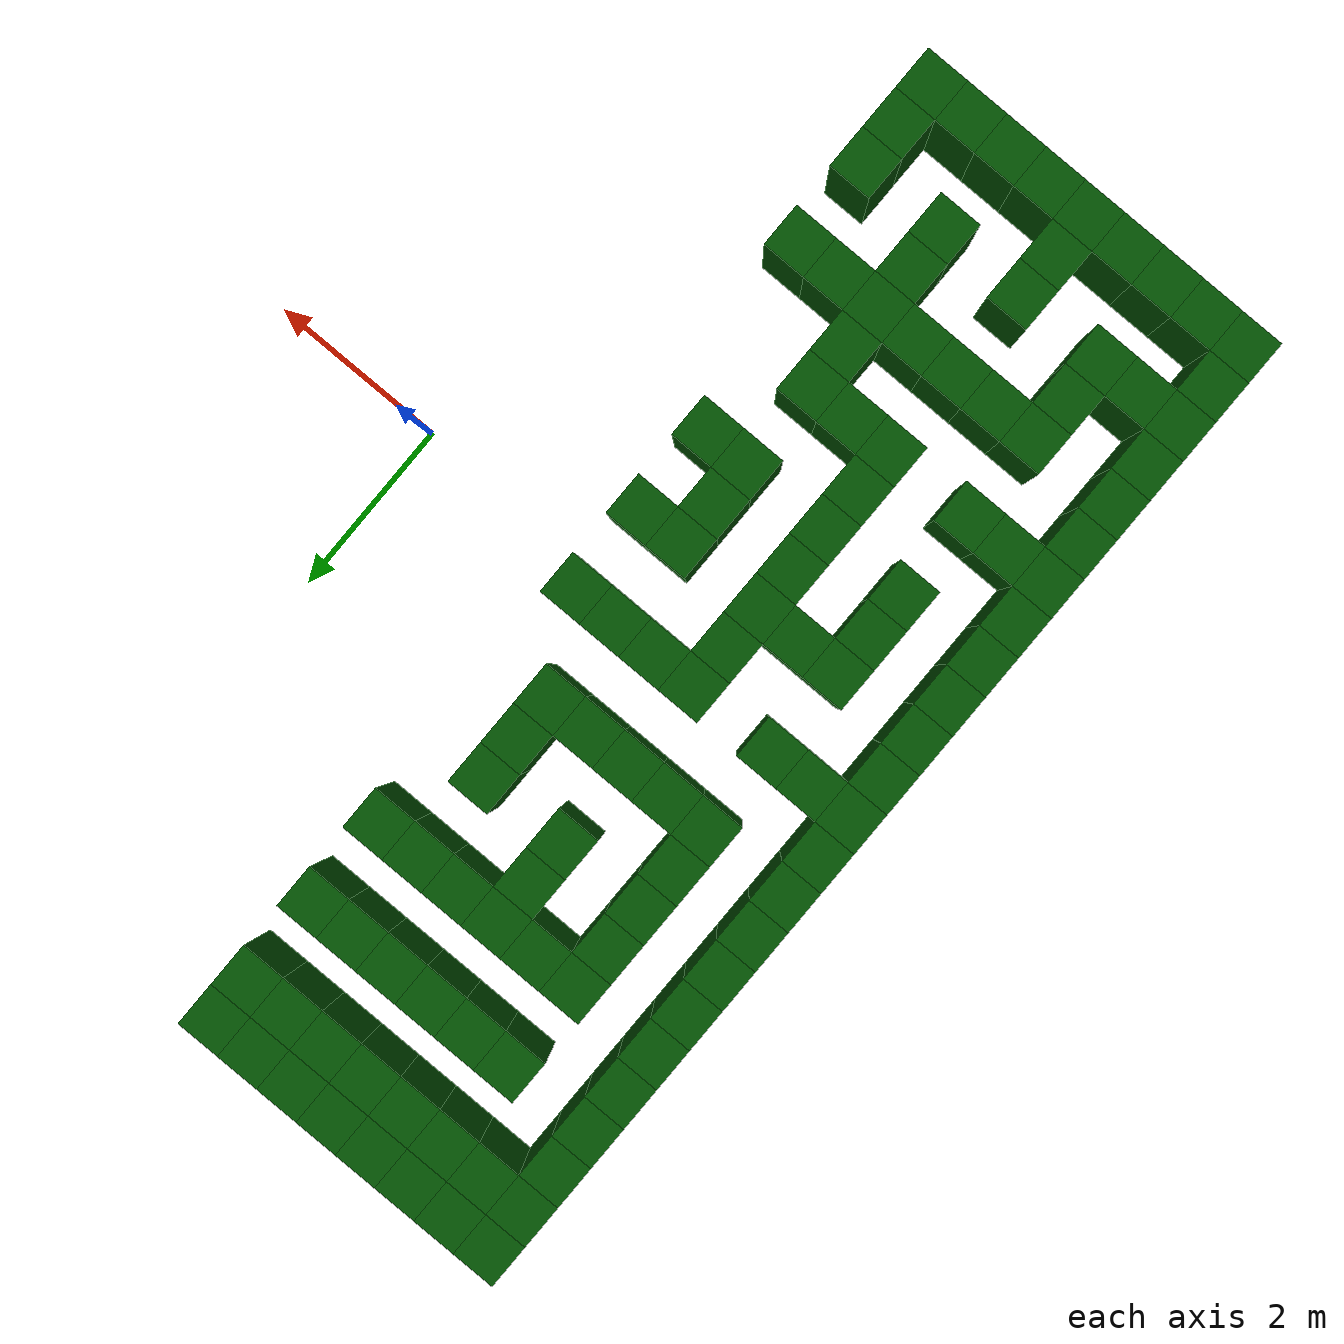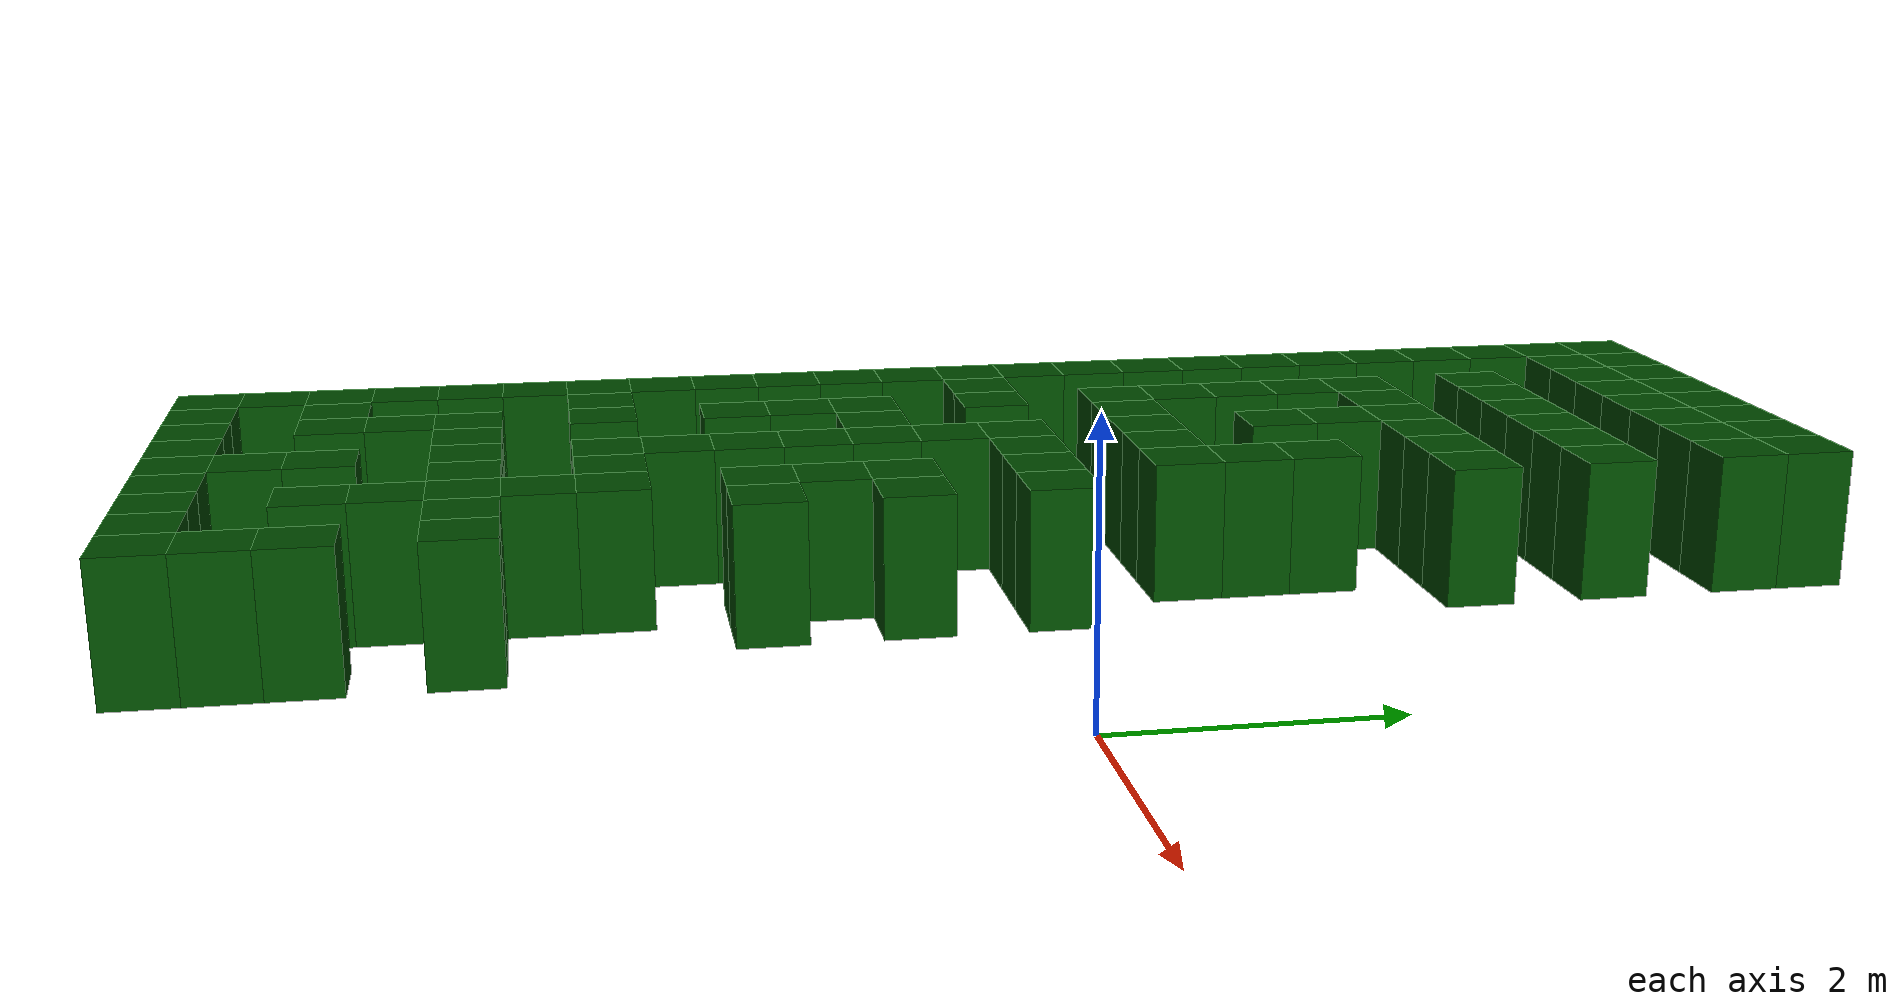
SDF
<sdf version="1.6">
 <world name="turtlebot3_maze">
  <model name="wall_0_0">
   <static>true</static>
   <pose>-5.75 -5.75 0.5 0 0 0</pose>
   <link name="link">
    <collision name="collision"><geometry><box><size>0.5 0.5 1.0</size></box></geometry></collision>
    <visual name="visual">
     <geometry><box><size>0.5 0.5 1.0</size></box></geometry>
     <material><ambient>0 0.3 0 1</ambient><diffuse>0 0.3 0 1</diffuse></material>
    </visual>
   </link>
  </model>
  <model name="wall_1_0">
   <static>true</static>
   <pose>-5.25 -5.75 0.5 0 0 0</pose>
   <link name="link">
    <collision name="collision"><geometry><box><size>0.5 0.5 1.0</size></box></geometry></collision>
    <visual name="visual">
     <geometry><box><size>0.5 0.5 1.0</size></box></geometry>
     <material><ambient>0 0.3 0 1</ambient><diffuse>0 0.3 0 1</diffuse></material>
    </visual>
   </link>
  </model>
  <model name="wall_2_0">
   <static>true</static>
   <pose>-4.75 -5.75 0.5 0 0 0</pose>
   <link name="link">
    <collision name="collision"><geometry><box><size>0.5 0.5 1.0</size></box></geometry></collision>
    <visual name="visual">
     <geometry><box><size>0.5 0.5 1.0</size></box></geometry>
     <material><ambient>0 0.3 0 1</ambient><diffuse>0 0.3 0 1</diffuse></material>
    </visual>
   </link>
  </model>
  <model name="wall_3_0">
   <static>true</static>
   <pose>-4.25 -5.75 0.5 0 0 0</pose>
   <link name="link">
    <collision name="collision"><geometry><box><size>0.5 0.5 1.0</size></box></geometry></collision>
    <visual name="visual">
     <geometry><box><size>0.5 0.5 1.0</size></box></geometry>
     <material><ambient>0 0.3 0 1</ambient><diffuse>0 0.3 0 1</diffuse></material>
    </visual>
   </link>
  </model>
  <model name="wall_4_0">
   <static>true</static>
   <pose>-3.75 -5.75 0.5 0 0 0</pose>
   <link name="link">
    <collision name="collision"><geometry><box><size>0.5 0.5 1.0</size></box></geometry></collision>
    <visual name="visual">
     <geometry><box><size>0.5 0.5 1.0</size></box></geometry>
     <material><ambient>0 0.3 0 1</ambient><diffuse>0 0.3 0 1</diffuse></material>
    </visual>
   </link>
  </model>
  <model name="wall_5_0">
   <static>true</static>
   <pose>-3.25 -5.75 0.5 0 0 0</pose>
   <link name="link">
    <collision name="collision"><geometry><box><size>0.5 0.5 1.0</size></box></geometry></collision>
    <visual name="visual">
     <geometry><box><size>0.5 0.5 1.0</size></box></geometry>
     <material><ambient>0 0.3 0 1</ambient><diffuse>0 0.3 0 1</diffuse></material>
    </visual>
   </link>
  </model>
  <model name="wall_6_0">
   <static>true</static>
   <pose>-2.75 -5.75 0.5 0 0 0</pose>
   <link name="link">
    <collision name="collision"><geometry><box><size>0.5 0.5 1.0</size></box></geometry></collision>
    <visual name="visual">
     <geometry><box><size>0.5 0.5 1.0</size></box></geometry>
     <material><ambient>0 0.3 0 1</ambient><diffuse>0 0.3 0 1</diffuse></material>
    </visual>
   </link>
  </model>
  <model name="wall_7_0">
   <static>true</static>
   <pose>-2.25 -5.75 0.5 0 0 0</pose>
   <link name="link">
    <collision name="collision"><geometry><box><size>0.5 0.5 1.0</size></box></geometry></collision>
    <visual name="visual">
     <geometry><box><size>0.5 0.5 1.0</size></box></geometry>
     <material><ambient>0 0.3 0 1</ambient><diffuse>0 0.3 0 1</diffuse></material>
    </visual>
   </link>
  </model>
  <model name="wall_8_0">
   <static>true</static>
   <pose>-1.75 -5.75 0.5 0 0 0</pose>
   <link name="link">
    <collision name="collision"><geometry><box><size>0.5 0.5 1.0</size></box></geometry></collision>
    <visual name="visual">
     <geometry><box><size>0.5 0.5 1.0</size></box></geometry>
     <material><ambient>0 0.3 0 1</ambient><diffuse>0 0.3 0 1</diffuse></material>
    </visual>
   </link>
  </model>
  <model name="wall_0_1">
   <static>true</static>
   <pose>-5.75 -5.25 0.5 0 0 0</pose>
   <link name="link">
    <collision name="collision"><geometry><box><size>0.5 0.5 1.0</size></box></geometry></collision>
    <visual name="visual">
     <geometry><box><size>0.5 0.5 1.0</size></box></geometry>
     <material><ambient>0 0.3 0 1</ambient><diffuse>0 0.3 0 1</diffuse></material>
    </visual>
   </link>
  </model>
  <model name="wall_4_1">
   <static>true</static>
   <pose>-3.75 -5.25 0.5 0 0 0</pose>
   <link name="link">
    <collision name="collision"><geometry><box><size>0.5 0.5 1.0</size></box></geometry></collision>
    <visual name="visual">
     <geometry><box><size>0.5 0.5 1.0</size></box></geometry>
     <material><ambient>0 0.3 0 1</ambient><diffuse>0 0.3 0 1</diffuse></material>
    </visual>
   </link>
  </model>
  <model name="wall_8_1">
   <static>true</static>
   <pose>-1.75 -5.25 0.5 0 0 0</pose>
   <link name="link">
    <collision name="collision"><geometry><box><size>0.5 0.5 1.0</size></box></geometry></collision>
    <visual name="visual">
     <geometry><box><size>0.5 0.5 1.0</size></box></geometry>
     <material><ambient>0 0.3 0 1</ambient><diffuse>0 0.3 0 1</diffuse></material>
    </visual>
   </link>
  </model>
  <model name="wall_0_2">
   <static>true</static>
   <pose>-5.75 -4.75 0.5 0 0 0</pose>
   <link name="link">
    <collision name="collision"><geometry><box><size>0.5 0.5 1.0</size></box></geometry></collision>
    <visual name="visual">
     <geometry><box><size>0.5 0.5 1.0</size></box></geometry>
     <material><ambient>0 0.3 0 1</ambient><diffuse>0 0.3 0 1</diffuse></material>
    </visual>
   </link>
  </model>
  <model name="wall_1_2">
   <static>true</static>
   <pose>-5.25 -4.75 0.5 0 0 0</pose>
   <link name="link">
    <collision name="collision"><geometry><box><size>0.5 0.5 1.0</size></box></geometry></collision>
    <visual name="visual">
     <geometry><box><size>0.5 0.5 1.0</size></box></geometry>
     <material><ambient>0 0.3 0 1</ambient><diffuse>0 0.3 0 1</diffuse></material>
    </visual>
   </link>
  </model>
  <model name="wall_2_2">
   <static>true</static>
   <pose>-4.75 -4.75 0.5 0 0 0</pose>
   <link name="link">
    <collision name="collision"><geometry><box><size>0.5 0.5 1.0</size></box></geometry></collision>
    <visual name="visual">
     <geometry><box><size>0.5 0.5 1.0</size></box></geometry>
     <material><ambient>0 0.3 0 1</ambient><diffuse>0 0.3 0 1</diffuse></material>
    </visual>
   </link>
  </model>
  <model name="wall_4_2">
   <static>true</static>
   <pose>-3.75 -4.75 0.5 0 0 0</pose>
   <link name="link">
    <collision name="collision"><geometry><box><size>0.5 0.5 1.0</size></box></geometry></collision>
    <visual name="visual">
     <geometry><box><size>0.5 0.5 1.0</size></box></geometry>
     <material><ambient>0 0.3 0 1</ambient><diffuse>0 0.3 0 1</diffuse></material>
    </visual>
   </link>
  </model>
  <model name="wall_6_2">
   <static>true</static>
   <pose>-2.75 -4.75 0.5 0 0 0</pose>
   <link name="link">
    <collision name="collision"><geometry><box><size>0.5 0.5 1.0</size></box></geometry></collision>
    <visual name="visual">
     <geometry><box><size>0.5 0.5 1.0</size></box></geometry>
     <material><ambient>0 0.3 0 1</ambient><diffuse>0 0.3 0 1</diffuse></material>
    </visual>
   </link>
  </model>
  <model name="wall_8_2">
   <static>true</static>
   <pose>-1.75 -4.75 0.5 0 0 0</pose>
   <link name="link">
    <collision name="collision"><geometry><box><size>0.5 0.5 1.0</size></box></geometry></collision>
    <visual name="visual">
     <geometry><box><size>0.5 0.5 1.0</size></box></geometry>
     <material><ambient>0 0.3 0 1</ambient><diffuse>0 0.3 0 1</diffuse></material>
    </visual>
   </link>
  </model>
  <model name="wall_0_3">
   <static>true</static>
   <pose>-5.75 -4.25 0.5 0 0 0</pose>
   <link name="link">
    <collision name="collision"><geometry><box><size>0.5 0.5 1.0</size></box></geometry></collision>
    <visual name="visual">
     <geometry><box><size>0.5 0.5 1.0</size></box></geometry>
     <material><ambient>0 0.3 0 1</ambient><diffuse>0 0.3 0 1</diffuse></material>
    </visual>
   </link>
  </model>
  <model name="wall_2_3">
   <static>true</static>
   <pose>-4.75 -4.25 0.5 0 0 0</pose>
   <link name="link">
    <collision name="collision"><geometry><box><size>0.5 0.5 1.0</size></box></geometry></collision>
    <visual name="visual">
     <geometry><box><size>0.5 0.5 1.0</size></box></geometry>
     <material><ambient>0 0.3 0 1</ambient><diffuse>0 0.3 0 1</diffuse></material>
    </visual>
   </link>
  </model>
  <model name="wall_6_3">
   <static>true</static>
   <pose>-2.75 -4.25 0.5 0 0 0</pose>
   <link name="link">
    <collision name="collision"><geometry><box><size>0.5 0.5 1.0</size></box></geometry></collision>
    <visual name="visual">
     <geometry><box><size>0.5 0.5 1.0</size></box></geometry>
     <material><ambient>0 0.3 0 1</ambient><diffuse>0 0.3 0 1</diffuse></material>
    </visual>
   </link>
  </model>
  <model name="wall_0_4">
   <static>true</static>
   <pose>-5.75 -3.75 0.5 0 0 0</pose>
   <link name="link">
    <collision name="collision"><geometry><box><size>0.5 0.5 1.0</size></box></geometry></collision>
    <visual name="visual">
     <geometry><box><size>0.5 0.5 1.0</size></box></geometry>
     <material><ambient>0 0.3 0 1</ambient><diffuse>0 0.3 0 1</diffuse></material>
    </visual>
   </link>
  </model>
  <model name="wall_2_4">
   <static>true</static>
   <pose>-4.75 -3.75 0.5 0 0 0</pose>
   <link name="link">
    <collision name="collision"><geometry><box><size>0.5 0.5 1.0</size></box></geometry></collision>
    <visual name="visual">
     <geometry><box><size>0.5 0.5 1.0</size></box></geometry>
     <material><ambient>0 0.3 0 1</ambient><diffuse>0 0.3 0 1</diffuse></material>
    </visual>
   </link>
  </model>
  <model name="wall_3_4">
   <static>true</static>
   <pose>-4.25 -3.75 0.5 0 0 0</pose>
   <link name="link">
    <collision name="collision"><geometry><box><size>0.5 0.5 1.0</size></box></geometry></collision>
    <visual name="visual">
     <geometry><box><size>0.5 0.5 1.0</size></box></geometry>
     <material><ambient>0 0.3 0 1</ambient><diffuse>0 0.3 0 1</diffuse></material>
    </visual>
   </link>
  </model>
  <model name="wall_4_4">
   <static>true</static>
   <pose>-3.75 -3.75 0.5 0 0 0</pose>
   <link name="link">
    <collision name="collision"><geometry><box><size>0.5 0.5 1.0</size></box></geometry></collision>
    <visual name="visual">
     <geometry><box><size>0.5 0.5 1.0</size></box></geometry>
     <material><ambient>0 0.3 0 1</ambient><diffuse>0 0.3 0 1</diffuse></material>
    </visual>
   </link>
  </model>
  <model name="wall_5_4">
   <static>true</static>
   <pose>-3.25 -3.75 0.5 0 0 0</pose>
   <link name="link">
    <collision name="collision"><geometry><box><size>0.5 0.5 1.0</size></box></geometry></collision>
    <visual name="visual">
     <geometry><box><size>0.5 0.5 1.0</size></box></geometry>
     <material><ambient>0 0.3 0 1</ambient><diffuse>0 0.3 0 1</diffuse></material>
    </visual>
   </link>
  </model>
  <model name="wall_6_4">
   <static>true</static>
   <pose>-2.75 -3.75 0.5 0 0 0</pose>
   <link name="link">
    <collision name="collision"><geometry><box><size>0.5 0.5 1.0</size></box></geometry></collision>
    <visual name="visual">
     <geometry><box><size>0.5 0.5 1.0</size></box></geometry>
     <material><ambient>0 0.3 0 1</ambient><diffuse>0 0.3 0 1</diffuse></material>
    </visual>
   </link>
  </model>
  <model name="wall_7_4">
   <static>true</static>
   <pose>-2.25 -3.75 0.5 0 0 0</pose>
   <link name="link">
    <collision name="collision"><geometry><box><size>0.5 0.5 1.0</size></box></geometry></collision>
    <visual name="visual">
     <geometry><box><size>0.5 0.5 1.0</size></box></geometry>
     <material><ambient>0 0.3 0 1</ambient><diffuse>0 0.3 0 1</diffuse></material>
    </visual>
   </link>
  </model>
  <model name="wall_8_4">
   <static>true</static>
   <pose>-1.75 -3.75 0.5 0 0 0</pose>
   <link name="link">
    <collision name="collision"><geometry><box><size>0.5 0.5 1.0</size></box></geometry></collision>
    <visual name="visual">
     <geometry><box><size>0.5 0.5 1.0</size></box></geometry>
     <material><ambient>0 0.3 0 1</ambient><diffuse>0 0.3 0 1</diffuse></material>
    </visual>
   </link>
  </model>
  <model name="wall_0_5">
   <static>true</static>
   <pose>-5.75 -3.25 0.5 0 0 0</pose>
   <link name="link">
    <collision name="collision"><geometry><box><size>0.5 0.5 1.0</size></box></geometry></collision>
    <visual name="visual">
     <geometry><box><size>0.5 0.5 1.0</size></box></geometry>
     <material><ambient>0 0.3 0 1</ambient><diffuse>0 0.3 0 1</diffuse></material>
    </visual>
   </link>
  </model>
  <model name="wall_6_5">
   <static>true</static>
   <pose>-2.75 -3.25 0.5 0 0 0</pose>
   <link name="link">
    <collision name="collision"><geometry><box><size>0.5 0.5 1.0</size></box></geometry></collision>
    <visual name="visual">
     <geometry><box><size>0.5 0.5 1.0</size></box></geometry>
     <material><ambient>0 0.3 0 1</ambient><diffuse>0 0.3 0 1</diffuse></material>
    </visual>
   </link>
  </model>
  <model name="wall_0_6">
   <static>true</static>
   <pose>-5.75 -2.75 0.5 0 0 0</pose>
   <link name="link">
    <collision name="collision"><geometry><box><size>0.5 0.5 1.0</size></box></geometry></collision>
    <visual name="visual">
     <geometry><box><size>0.5 0.5 1.0</size></box></geometry>
     <material><ambient>0 0.3 0 1</ambient><diffuse>0 0.3 0 1</diffuse></material>
    </visual>
   </link>
  </model>
  <model name="wall_1_6">
   <static>true</static>
   <pose>-5.25 -2.75 0.5 0 0 0</pose>
   <link name="link">
    <collision name="collision"><geometry><box><size>0.5 0.5 1.0</size></box></geometry></collision>
    <visual name="visual">
     <geometry><box><size>0.5 0.5 1.0</size></box></geometry>
     <material><ambient>0 0.3 0 1</ambient><diffuse>0 0.3 0 1</diffuse></material>
    </visual>
   </link>
  </model>
  <model name="wall_2_6">
   <static>true</static>
   <pose>-4.75 -2.75 0.5 0 0 0</pose>
   <link name="link">
    <collision name="collision"><geometry><box><size>0.5 0.5 1.0</size></box></geometry></collision>
    <visual name="visual">
     <geometry><box><size>0.5 0.5 1.0</size></box></geometry>
     <material><ambient>0 0.3 0 1</ambient><diffuse>0 0.3 0 1</diffuse></material>
    </visual>
   </link>
  </model>
  <model name="wall_4_6">
   <static>true</static>
   <pose>-3.75 -2.75 0.5 0 0 0</pose>
   <link name="link">
    <collision name="collision"><geometry><box><size>0.5 0.5 1.0</size></box></geometry></collision>
    <visual name="visual">
     <geometry><box><size>0.5 0.5 1.0</size></box></geometry>
     <material><ambient>0 0.3 0 1</ambient><diffuse>0 0.3 0 1</diffuse></material>
    </visual>
   </link>
  </model>
  <model name="wall_5_6">
   <static>true</static>
   <pose>-3.25 -2.75 0.5 0 0 0</pose>
   <link name="link">
    <collision name="collision"><geometry><box><size>0.5 0.5 1.0</size></box></geometry></collision>
    <visual name="visual">
     <geometry><box><size>0.5 0.5 1.0</size></box></geometry>
     <material><ambient>0 0.3 0 1</ambient><diffuse>0 0.3 0 1</diffuse></material>
    </visual>
   </link>
  </model>
  <model name="wall_6_6">
   <static>true</static>
   <pose>-2.75 -2.75 0.5 0 0 0</pose>
   <link name="link">
    <collision name="collision"><geometry><box><size>0.5 0.5 1.0</size></box></geometry></collision>
    <visual name="visual">
     <geometry><box><size>0.5 0.5 1.0</size></box></geometry>
     <material><ambient>0 0.3 0 1</ambient><diffuse>0 0.3 0 1</diffuse></material>
    </visual>
   </link>
  </model>
  <model name="wall_0_7">
   <static>true</static>
   <pose>-5.75 -2.25 0.5 0 0 0</pose>
   <link name="link">
    <collision name="collision"><geometry><box><size>0.5 0.5 1.0</size></box></geometry></collision>
    <visual name="visual">
     <geometry><box><size>0.5 0.5 1.0</size></box></geometry>
     <material><ambient>0 0.3 0 1</ambient><diffuse>0 0.3 0 1</diffuse></material>
    </visual>
   </link>
  </model>
  <model name="wall_4_7">
   <static>true</static>
   <pose>-3.75 -2.25 0.5 0 0 0</pose>
   <link name="link">
    <collision name="collision"><geometry><box><size>0.5 0.5 1.0</size></box></geometry></collision>
    <visual name="visual">
     <geometry><box><size>0.5 0.5 1.0</size></box></geometry>
     <material><ambient>0 0.3 0 1</ambient><diffuse>0 0.3 0 1</diffuse></material>
    </visual>
   </link>
  </model>
  <model name="wall_0_8">
   <static>true</static>
   <pose>-5.75 -1.75 0.5 0 0 0</pose>
   <link name="link">
    <collision name="collision"><geometry><box><size>0.5 0.5 1.0</size></box></geometry></collision>
    <visual name="visual">
     <geometry><box><size>0.5 0.5 1.0</size></box></geometry>
     <material><ambient>0 0.3 0 1</ambient><diffuse>0 0.3 0 1</diffuse></material>
    </visual>
   </link>
  </model>
  <model name="wall_2_8">
   <static>true</static>
   <pose>-4.75 -1.75 0.5 0 0 0</pose>
   <link name="link">
    <collision name="collision"><geometry><box><size>0.5 0.5 1.0</size></box></geometry></collision>
    <visual name="visual">
     <geometry><box><size>0.5 0.5 1.0</size></box></geometry>
     <material><ambient>0 0.3 0 1</ambient><diffuse>0 0.3 0 1</diffuse></material>
    </visual>
   </link>
  </model>
  <model name="wall_4_8">
   <static>true</static>
   <pose>-3.75 -1.75 0.5 0 0 0</pose>
   <link name="link">
    <collision name="collision"><geometry><box><size>0.5 0.5 1.0</size></box></geometry></collision>
    <visual name="visual">
     <geometry><box><size>0.5 0.5 1.0</size></box></geometry>
     <material><ambient>0 0.3 0 1</ambient><diffuse>0 0.3 0 1</diffuse></material>
    </visual>
   </link>
  </model>
  <model name="wall_6_8">
   <static>true</static>
   <pose>-2.75 -1.75 0.5 0 0 0</pose>
   <link name="link">
    <collision name="collision"><geometry><box><size>0.5 0.5 1.0</size></box></geometry></collision>
    <visual name="visual">
     <geometry><box><size>0.5 0.5 1.0</size></box></geometry>
     <material><ambient>0 0.3 0 1</ambient><diffuse>0 0.3 0 1</diffuse></material>
    </visual>
   </link>
  </model>
  <model name="wall_7_8">
   <static>true</static>
   <pose>-2.25 -1.75 0.5 0 0 0</pose>
   <link name="link">
    <collision name="collision"><geometry><box><size>0.5 0.5 1.0</size></box></geometry></collision>
    <visual name="visual">
     <geometry><box><size>0.5 0.5 1.0</size></box></geometry>
     <material><ambient>0 0.3 0 1</ambient><diffuse>0 0.3 0 1</diffuse></material>
    </visual>
   </link>
  </model>
  <model name="wall_0_9">
   <static>true</static>
   <pose>-5.75 -1.25 0.5 0 0 0</pose>
   <link name="link">
    <collision name="collision"><geometry><box><size>0.5 0.5 1.0</size></box></geometry></collision>
    <visual name="visual">
     <geometry><box><size>0.5 0.5 1.0</size></box></geometry>
     <material><ambient>0 0.3 0 1</ambient><diffuse>0 0.3 0 1</diffuse></material>
    </visual>
   </link>
  </model>
  <model name="wall_2_9">
   <static>true</static>
   <pose>-4.75 -1.25 0.5 0 0 0</pose>
   <link name="link">
    <collision name="collision"><geometry><box><size>0.5 0.5 1.0</size></box></geometry></collision>
    <visual name="visual">
     <geometry><box><size>0.5 0.5 1.0</size></box></geometry>
     <material><ambient>0 0.3 0 1</ambient><diffuse>0 0.3 0 1</diffuse></material>
    </visual>
   </link>
  </model>
  <model name="wall_4_9">
   <static>true</static>
   <pose>-3.75 -1.25 0.5 0 0 0</pose>
   <link name="link">
    <collision name="collision"><geometry><box><size>0.5 0.5 1.0</size></box></geometry></collision>
    <visual name="visual">
     <geometry><box><size>0.5 0.5 1.0</size></box></geometry>
     <material><ambient>0 0.3 0 1</ambient><diffuse>0 0.3 0 1</diffuse></material>
    </visual>
   </link>
  </model>
  <model name="wall_6_9">
   <static>true</static>
   <pose>-2.75 -1.25 0.5 0 0 0</pose>
   <link name="link">
    <collision name="collision"><geometry><box><size>0.5 0.5 1.0</size></box></geometry></collision>
    <visual name="visual">
     <geometry><box><size>0.5 0.5 1.0</size></box></geometry>
     <material><ambient>0 0.3 0 1</ambient><diffuse>0 0.3 0 1</diffuse></material>
    </visual>
   </link>
  </model>
  <model name="wall_0_10">
   <static>true</static>
   <pose>-5.75 -0.75 0.5 0 0 0</pose>
   <link name="link">
    <collision name="collision"><geometry><box><size>0.5 0.5 1.0</size></box></geometry></collision>
    <visual name="visual">
     <geometry><box><size>0.5 0.5 1.0</size></box></geometry>
     <material><ambient>0 0.3 0 1</ambient><diffuse>0 0.3 0 1</diffuse></material>
    </visual>
   </link>
  </model>
  <model name="wall_2_10">
   <static>true</static>
   <pose>-4.75 -0.75 0.5 0 0 0</pose>
   <link name="link">
    <collision name="collision"><geometry><box><size>0.5 0.5 1.0</size></box></geometry></collision>
    <visual name="visual">
     <geometry><box><size>0.5 0.5 1.0</size></box></geometry>
     <material><ambient>0 0.3 0 1</ambient><diffuse>0 0.3 0 1</diffuse></material>
    </visual>
   </link>
  </model>
  <model name="wall_3_10">
   <static>true</static>
   <pose>-4.25 -0.75 0.5 0 0 0</pose>
   <link name="link">
    <collision name="collision"><geometry><box><size>0.5 0.5 1.0</size></box></geometry></collision>
    <visual name="visual">
     <geometry><box><size>0.5 0.5 1.0</size></box></geometry>
     <material><ambient>0 0.3 0 1</ambient><diffuse>0 0.3 0 1</diffuse></material>
    </visual>
   </link>
  </model>
  <model name="wall_4_10">
   <static>true</static>
   <pose>-3.75 -0.75 0.5 0 0 0</pose>
   <link name="link">
    <collision name="collision"><geometry><box><size>0.5 0.5 1.0</size></box></geometry></collision>
    <visual name="visual">
     <geometry><box><size>0.5 0.5 1.0</size></box></geometry>
     <material><ambient>0 0.3 0 1</ambient><diffuse>0 0.3 0 1</diffuse></material>
    </visual>
   </link>
  </model>
  <model name="wall_6_10">
   <static>true</static>
   <pose>-2.75 -0.75 0.5 0 0 0</pose>
   <link name="link">
    <collision name="collision"><geometry><box><size>0.5 0.5 1.0</size></box></geometry></collision>
    <visual name="visual">
     <geometry><box><size>0.5 0.5 1.0</size></box></geometry>
     <material><ambient>0 0.3 0 1</ambient><diffuse>0 0.3 0 1</diffuse></material>
    </visual>
   </link>
  </model>
  <model name="wall_7_10">
   <static>true</static>
   <pose>-2.25 -0.75 0.5 0 0 0</pose>
   <link name="link">
    <collision name="collision"><geometry><box><size>0.5 0.5 1.0</size></box></geometry></collision>
    <visual name="visual">
     <geometry><box><size>0.5 0.5 1.0</size></box></geometry>
     <material><ambient>0 0.3 0 1</ambient><diffuse>0 0.3 0 1</diffuse></material>
    </visual>
   </link>
  </model>
  <model name="wall_0_11">
   <static>true</static>
   <pose>-5.75 -0.25 0.5 0 0 0</pose>
   <link name="link">
    <collision name="collision"><geometry><box><size>0.5 0.5 1.0</size></box></geometry></collision>
    <visual name="visual">
     <geometry><box><size>0.5 0.5 1.0</size></box></geometry>
     <material><ambient>0 0.3 0 1</ambient><diffuse>0 0.3 0 1</diffuse></material>
    </visual>
   </link>
  </model>
  <model name="wall_4_11">
   <static>true</static>
   <pose>-3.75 -0.25 0.5 0 0 0</pose>
   <link name="link">
    <collision name="collision"><geometry><box><size>0.5 0.5 1.0</size></box></geometry></collision>
    <visual name="visual">
     <geometry><box><size>0.5 0.5 1.0</size></box></geometry>
     <material><ambient>0 0.3 0 1</ambient><diffuse>0 0.3 0 1</diffuse></material>
    </visual>
   </link>
  </model>
  <model name="wall_0_12">
   <static>true</static>
   <pose>-5.75 0.25 0.5 0 0 0</pose>
   <link name="link">
    <collision name="collision"><geometry><box><size>0.5 0.5 1.0</size></box></geometry></collision>
    <visual name="visual">
     <geometry><box><size>0.5 0.5 1.0</size></box></geometry>
     <material><ambient>0 0.3 0 1</ambient><diffuse>0 0.3 0 1</diffuse></material>
    </visual>
   </link>
  </model>
  <model name="wall_1_12">
   <static>true</static>
   <pose>-5.25 0.25 0.5 0 0 0</pose>
   <link name="link">
    <collision name="collision"><geometry><box><size>0.5 0.5 1.0</size></box></geometry></collision>
    <visual name="visual">
     <geometry><box><size>0.5 0.5 1.0</size></box></geometry>
     <material><ambient>0 0.3 0 1</ambient><diffuse>0 0.3 0 1</diffuse></material>
    </visual>
   </link>
  </model>
  <model name="wall_2_12">
   <static>true</static>
   <pose>-4.75 0.25 0.5 0 0 0</pose>
   <link name="link">
    <collision name="collision"><geometry><box><size>0.5 0.5 1.0</size></box></geometry></collision>
    <visual name="visual">
     <geometry><box><size>0.5 0.5 1.0</size></box></geometry>
     <material><ambient>0 0.3 0 1</ambient><diffuse>0 0.3 0 1</diffuse></material>
    </visual>
   </link>
  </model>
  <model name="wall_4_12">
   <static>true</static>
   <pose>-3.75 0.25 0.5 0 0 0</pose>
   <link name="link">
    <collision name="collision"><geometry><box><size>0.5 0.5 1.0</size></box></geometry></collision>
    <visual name="visual">
     <geometry><box><size>0.5 0.5 1.0</size></box></geometry>
     <material><ambient>0 0.3 0 1</ambient><diffuse>0 0.3 0 1</diffuse></material>
    </visual>
   </link>
  </model>
  <model name="wall_5_12">
   <static>true</static>
   <pose>-3.25 0.25 0.5 0 0 0</pose>
   <link name="link">
    <collision name="collision"><geometry><box><size>0.5 0.5 1.0</size></box></geometry></collision>
    <visual name="visual">
     <geometry><box><size>0.5 0.5 1.0</size></box></geometry>
     <material><ambient>0 0.3 0 1</ambient><diffuse>0 0.3 0 1</diffuse></material>
    </visual>
   </link>
  </model>
  <model name="wall_6_12">
   <static>true</static>
   <pose>-2.75 0.25 0.5 0 0 0</pose>
   <link name="link">
    <collision name="collision"><geometry><box><size>0.5 0.5 1.0</size></box></geometry></collision>
    <visual name="visual">
     <geometry><box><size>0.5 0.5 1.0</size></box></geometry>
     <material><ambient>0 0.3 0 1</ambient><diffuse>0 0.3 0 1</diffuse></material>
    </visual>
   </link>
  </model>
  <model name="wall_7_12">
   <static>true</static>
   <pose>-2.25 0.25 0.5 0 0 0</pose>
   <link name="link">
    <collision name="collision"><geometry><box><size>0.5 0.5 1.0</size></box></geometry></collision>
    <visual name="visual">
     <geometry><box><size>0.5 0.5 1.0</size></box></geometry>
     <material><ambient>0 0.3 0 1</ambient><diffuse>0 0.3 0 1</diffuse></material>
    </visual>
   </link>
  </model>
  <model name="wall_0_13">
   <static>true</static>
   <pose>-5.75 0.75 0.5 0 0 0</pose>
   <link name="link">
    <collision name="collision"><geometry><box><size>0.5 0.5 1.0</size></box></geometry></collision>
    <visual name="visual">
     <geometry><box><size>0.5 0.5 1.0</size></box></geometry>
     <material><ambient>0 0.3 0 1</ambient><diffuse>0 0.3 0 1</diffuse></material>
    </visual>
   </link>
  </model>
  <model name="wall_0_14">
   <static>true</static>
   <pose>-5.75 1.25 0.5 0 0 0</pose>
   <link name="link">
    <collision name="collision"><geometry><box><size>0.5 0.5 1.0</size></box></geometry></collision>
    <visual name="visual">
     <geometry><box><size>0.5 0.5 1.0</size></box></geometry>
     <material><ambient>0 0.3 0 1</ambient><diffuse>0 0.3 0 1</diffuse></material>
    </visual>
   </link>
  </model>
  <model name="wall_2_14">
   <static>true</static>
   <pose>-4.75 1.25 0.5 0 0 0</pose>
   <link name="link">
    <collision name="collision"><geometry><box><size>0.5 0.5 1.0</size></box></geometry></collision>
    <visual name="visual">
     <geometry><box><size>0.5 0.5 1.0</size></box></geometry>
     <material><ambient>0 0.3 0 1</ambient><diffuse>0 0.3 0 1</diffuse></material>
    </visual>
   </link>
  </model>
  <model name="wall_3_14">
   <static>true</static>
   <pose>-4.25 1.25 0.5 0 0 0</pose>
   <link name="link">
    <collision name="collision"><geometry><box><size>0.5 0.5 1.0</size></box></geometry></collision>
    <visual name="visual">
     <geometry><box><size>0.5 0.5 1.0</size></box></geometry>
     <material><ambient>0 0.3 0 1</ambient><diffuse>0 0.3 0 1</diffuse></material>
    </visual>
   </link>
  </model>
  <model name="wall_4_14">
   <static>true</static>
   <pose>-3.75 1.25 0.5 0 0 0</pose>
   <link name="link">
    <collision name="collision"><geometry><box><size>0.5 0.5 1.0</size></box></geometry></collision>
    <visual name="visual">
     <geometry><box><size>0.5 0.5 1.0</size></box></geometry>
     <material><ambient>0 0.3 0 1</ambient><diffuse>0 0.3 0 1</diffuse></material>
    </visual>
   </link>
  </model>
  <model name="wall_5_14">
   <static>true</static>
   <pose>-3.25 1.25 0.5 0 0 0</pose>
   <link name="link">
    <collision name="collision"><geometry><box><size>0.5 0.5 1.0</size></box></geometry></collision>
    <visual name="visual">
     <geometry><box><size>0.5 0.5 1.0</size></box></geometry>
     <material><ambient>0 0.3 0 1</ambient><diffuse>0 0.3 0 1</diffuse></material>
    </visual>
   </link>
  </model>
  <model name="wall_6_14">
   <static>true</static>
   <pose>-2.75 1.25 0.5 0 0 0</pose>
   <link name="link">
    <collision name="collision"><geometry><box><size>0.5 0.5 1.0</size></box></geometry></collision>
    <visual name="visual">
     <geometry><box><size>0.5 0.5 1.0</size></box></geometry>
     <material><ambient>0 0.3 0 1</ambient><diffuse>0 0.3 0 1</diffuse></material>
    </visual>
   </link>
  </model>
  <model name="wall_0_15">
   <static>true</static>
   <pose>-5.75 1.75 0.5 0 0 0</pose>
   <link name="link">
    <collision name="collision"><geometry><box><size>0.5 0.5 1.0</size></box></geometry></collision>
    <visual name="visual">
     <geometry><box><size>0.5 0.5 1.0</size></box></geometry>
     <material><ambient>0 0.3 0 1</ambient><diffuse>0 0.3 0 1</diffuse></material>
    </visual>
   </link>
  </model>
  <model name="wall_2_15">
   <static>true</static>
   <pose>-4.75 1.75 0.5 0 0 0</pose>
   <link name="link">
    <collision name="collision"><geometry><box><size>0.5 0.5 1.0</size></box></geometry></collision>
    <visual name="visual">
     <geometry><box><size>0.5 0.5 1.0</size></box></geometry>
     <material><ambient>0 0.3 0 1</ambient><diffuse>0 0.3 0 1</diffuse></material>
    </visual>
   </link>
  </model>
  <model name="wall_6_15">
   <static>true</static>
   <pose>-2.75 1.75 0.5 0 0 0</pose>
   <link name="link">
    <collision name="collision"><geometry><box><size>0.5 0.5 1.0</size></box></geometry></collision>
    <visual name="visual">
     <geometry><box><size>0.5 0.5 1.0</size></box></geometry>
     <material><ambient>0 0.3 0 1</ambient><diffuse>0 0.3 0 1</diffuse></material>
    </visual>
   </link>
  </model>
  <model name="wall_0_16">
   <static>true</static>
   <pose>-5.75 2.25 0.5 0 0 0</pose>
   <link name="link">
    <collision name="collision"><geometry><box><size>0.5 0.5 1.0</size></box></geometry></collision>
    <visual name="visual">
     <geometry><box><size>0.5 0.5 1.0</size></box></geometry>
     <material><ambient>0 0.3 0 1</ambient><diffuse>0 0.3 0 1</diffuse></material>
    </visual>
   </link>
  </model>
  <model name="wall_2_16">
   <static>true</static>
   <pose>-4.75 2.25 0.5 0 0 0</pose>
   <link name="link">
    <collision name="collision"><geometry><box><size>0.5 0.5 1.0</size></box></geometry></collision>
    <visual name="visual">
     <geometry><box><size>0.5 0.5 1.0</size></box></geometry>
     <material><ambient>0 0.3 0 1</ambient><diffuse>0 0.3 0 1</diffuse></material>
    </visual>
   </link>
  </model>
  <model name="wall_4_16">
   <static>true</static>
   <pose>-3.75 2.25 0.5 0 0 0</pose>
   <link name="link">
    <collision name="collision"><geometry><box><size>0.5 0.5 1.0</size></box></geometry></collision>
    <visual name="visual">
     <geometry><box><size>0.5 0.5 1.0</size></box></geometry>
     <material><ambient>0 0.3 0 1</ambient><diffuse>0 0.3 0 1</diffuse></material>
    </visual>
   </link>
  </model>
  <model name="wall_6_16">
   <static>true</static>
   <pose>-2.75 2.25 0.5 0 0 0</pose>
   <link name="link">
    <collision name="collision"><geometry><box><size>0.5 0.5 1.0</size></box></geometry></collision>
    <visual name="visual">
     <geometry><box><size>0.5 0.5 1.0</size></box></geometry>
     <material><ambient>0 0.3 0 1</ambient><diffuse>0 0.3 0 1</diffuse></material>
    </visual>
   </link>
  </model>
  <model name="wall_0_17">
   <static>true</static>
   <pose>-5.75 2.75 0.5 0 0 0</pose>
   <link name="link">
    <collision name="collision"><geometry><box><size>0.5 0.5 1.0</size></box></geometry></collision>
    <visual name="visual">
     <geometry><box><size>0.5 0.5 1.0</size></box></geometry>
     <material><ambient>0 0.3 0 1</ambient><diffuse>0 0.3 0 1</diffuse></material>
    </visual>
   </link>
  </model>
  <model name="wall_2_17">
   <static>true</static>
   <pose>-4.75 2.75 0.5 0 0 0</pose>
   <link name="link">
    <collision name="collision"><geometry><box><size>0.5 0.5 1.0</size></box></geometry></collision>
    <visual name="visual">
     <geometry><box><size>0.5 0.5 1.0</size></box></geometry>
     <material><ambient>0 0.3 0 1</ambient><diffuse>0 0.3 0 1</diffuse></material>
    </visual>
   </link>
  </model>
  <model name="wall_4_17">
   <static>true</static>
   <pose>-3.75 2.75 0.5 0 0 0</pose>
   <link name="link">
    <collision name="collision"><geometry><box><size>0.5 0.5 1.0</size></box></geometry></collision>
    <visual name="visual">
     <geometry><box><size>0.5 0.5 1.0</size></box></geometry>
     <material><ambient>0 0.3 0 1</ambient><diffuse>0 0.3 0 1</diffuse></material>
    </visual>
   </link>
  </model>
  <model name="wall_0_18">
   <static>true</static>
   <pose>-5.75 3.25 0.5 0 0 0</pose>
   <link name="link">
    <collision name="collision"><geometry><box><size>0.5 0.5 1.0</size></box></geometry></collision>
    <visual name="visual">
     <geometry><box><size>0.5 0.5 1.0</size></box></geometry>
     <material><ambient>0 0.3 0 1</ambient><diffuse>0 0.3 0 1</diffuse></material>
    </visual>
   </link>
  </model>
  <model name="wall_2_18">
   <static>true</static>
   <pose>-4.75 3.25 0.5 0 0 0</pose>
   <link name="link">
    <collision name="collision"><geometry><box><size>0.5 0.5 1.0</size></box></geometry></collision>
    <visual name="visual">
     <geometry><box><size>0.5 0.5 1.0</size></box></geometry>
     <material><ambient>0 0.3 0 1</ambient><diffuse>0 0.3 0 1</diffuse></material>
    </visual>
   </link>
  </model>
  <model name="wall_3_18">
   <static>true</static>
   <pose>-4.25 3.25 0.5 0 0 0</pose>
   <link name="link">
    <collision name="collision"><geometry><box><size>0.5 0.5 1.0</size></box></geometry></collision>
    <visual name="visual">
     <geometry><box><size>0.5 0.5 1.0</size></box></geometry>
     <material><ambient>0 0.3 0 1</ambient><diffuse>0 0.3 0 1</diffuse></material>
    </visual>
   </link>
  </model>
  <model name="wall_4_18">
   <static>true</static>
   <pose>-3.75 3.25 0.5 0 0 0</pose>
   <link name="link">
    <collision name="collision"><geometry><box><size>0.5 0.5 1.0</size></box></geometry></collision>
    <visual name="visual">
     <geometry><box><size>0.5 0.5 1.0</size></box></geometry>
     <material><ambient>0 0.3 0 1</ambient><diffuse>0 0.3 0 1</diffuse></material>
    </visual>
   </link>
  </model>
  <model name="wall_5_18">
   <static>true</static>
   <pose>-3.25 3.25 0.5 0 0 0</pose>
   <link name="link">
    <collision name="collision"><geometry><box><size>0.5 0.5 1.0</size></box></geometry></collision>
    <visual name="visual">
     <geometry><box><size>0.5 0.5 1.0</size></box></geometry>
     <material><ambient>0 0.3 0 1</ambient><diffuse>0 0.3 0 1</diffuse></material>
    </visual>
   </link>
  </model>
  <model name="wall_6_18">
   <static>true</static>
   <pose>-2.75 3.25 0.5 0 0 0</pose>
   <link name="link">
    <collision name="collision"><geometry><box><size>0.5 0.5 1.0</size></box></geometry></collision>
    <visual name="visual">
     <geometry><box><size>0.5 0.5 1.0</size></box></geometry>
     <material><ambient>0 0.3 0 1</ambient><diffuse>0 0.3 0 1</diffuse></material>
    </visual>
   </link>
  </model>
  <model name="wall_7_18">
   <static>true</static>
   <pose>-2.25 3.25 0.5 0 0 0</pose>
   <link name="link">
    <collision name="collision"><geometry><box><size>0.5 0.5 1.0</size></box></geometry></collision>
    <visual name="visual">
     <geometry><box><size>0.5 0.5 1.0</size></box></geometry>
     <material><ambient>0 0.3 0 1</ambient><diffuse>0 0.3 0 1</diffuse></material>
    </visual>
   </link>
  </model>
  <model name="wall_0_19">
   <static>true</static>
   <pose>-5.75 3.75 0.5 0 0 0</pose>
   <link name="link">
    <collision name="collision"><geometry><box><size>0.5 0.5 1.0</size></box></geometry></collision>
    <visual name="visual">
     <geometry><box><size>0.5 0.5 1.0</size></box></geometry>
     <material><ambient>0 0.3 0 1</ambient><diffuse>0 0.3 0 1</diffuse></material>
    </visual>
   </link>
  </model>
  <model name="wall_0_20">
   <static>true</static>
   <pose>-5.75 4.25 0.5 0 0 0</pose>
   <link name="link">
    <collision name="collision"><geometry><box><size>0.5 0.5 1.0</size></box></geometry></collision>
    <visual name="visual">
     <geometry><box><size>0.5 0.5 1.0</size></box></geometry>
     <material><ambient>0 0.3 0 1</ambient><diffuse>0 0.3 0 1</diffuse></material>
    </visual>
   </link>
  </model>
  <model name="wall_2_20">
   <static>true</static>
   <pose>-4.75 4.25 0.5 0 0 0</pose>
   <link name="link">
    <collision name="collision"><geometry><box><size>0.5 0.5 1.0</size></box></geometry></collision>
    <visual name="visual">
     <geometry><box><size>0.5 0.5 1.0</size></box></geometry>
     <material><ambient>0 0.3 0 1</ambient><diffuse>0 0.3 0 1</diffuse></material>
    </visual>
   </link>
  </model>
  <model name="wall_3_20">
   <static>true</static>
   <pose>-4.25 4.25 0.5 0 0 0</pose>
   <link name="link">
    <collision name="collision"><geometry><box><size>0.5 0.5 1.0</size></box></geometry></collision>
    <visual name="visual">
     <geometry><box><size>0.5 0.5 1.0</size></box></geometry>
     <material><ambient>0 0.3 0 1</ambient><diffuse>0 0.3 0 1</diffuse></material>
    </visual>
   </link>
  </model>
  <model name="wall_4_20">
   <static>true</static>
   <pose>-3.75 4.25 0.5 0 0 0</pose>
   <link name="link">
    <collision name="collision"><geometry><box><size>0.5 0.5 1.0</size></box></geometry></collision>
    <visual name="visual">
     <geometry><box><size>0.5 0.5 1.0</size></box></geometry>
     <material><ambient>0 0.3 0 1</ambient><diffuse>0 0.3 0 1</diffuse></material>
    </visual>
   </link>
  </model>
  <model name="wall_5_20">
   <static>true</static>
   <pose>-3.25 4.25 0.5 0 0 0</pose>
   <link name="link">
    <collision name="collision"><geometry><box><size>0.5 0.5 1.0</size></box></geometry></collision>
    <visual name="visual">
     <geometry><box><size>0.5 0.5 1.0</size></box></geometry>
     <material><ambient>0 0.3 0 1</ambient><diffuse>0 0.3 0 1</diffuse></material>
    </visual>
   </link>
  </model>
  <model name="wall_6_20">
   <static>true</static>
   <pose>-2.75 4.25 0.5 0 0 0</pose>
   <link name="link">
    <collision name="collision"><geometry><box><size>0.5 0.5 1.0</size></box></geometry></collision>
    <visual name="visual">
     <geometry><box><size>0.5 0.5 1.0</size></box></geometry>
     <material><ambient>0 0.3 0 1</ambient><diffuse>0 0.3 0 1</diffuse></material>
    </visual>
   </link>
  </model>
  <model name="wall_7_20">
   <static>true</static>
   <pose>-2.25 4.25 0.5 0 0 0</pose>
   <link name="link">
    <collision name="collision"><geometry><box><size>0.5 0.5 1.0</size></box></geometry></collision>
    <visual name="visual">
     <geometry><box><size>0.5 0.5 1.0</size></box></geometry>
     <material><ambient>0 0.3 0 1</ambient><diffuse>0 0.3 0 1</diffuse></material>
    </visual>
   </link>
  </model>
  <model name="wall_0_21">
   <static>true</static>
   <pose>-5.75 4.75 0.5 0 0 0</pose>
   <link name="link">
    <collision name="collision"><geometry><box><size>0.5 0.5 1.0</size></box></geometry></collision>
    <visual name="visual">
     <geometry><box><size>0.5 0.5 1.0</size></box></geometry>
     <material><ambient>0 0.3 0 1</ambient><diffuse>0 0.3 0 1</diffuse></material>
    </visual>
   </link>
  </model>
  <model name="wall_0_22">
   <static>true</static>
   <pose>-5.75 5.25 0.5 0 0 0</pose>
   <link name="link">
    <collision name="collision"><geometry><box><size>0.5 0.5 1.0</size></box></geometry></collision>
    <visual name="visual">
     <geometry><box><size>0.5 0.5 1.0</size></box></geometry>
     <material><ambient>0 0.3 0 1</ambient><diffuse>0 0.3 0 1</diffuse></material>
    </visual>
   </link>
  </model>
  <model name="wall_1_22">
   <static>true</static>
   <pose>-5.25 5.25 0.5 0 0 0</pose>
   <link name="link">
    <collision name="collision"><geometry><box><size>0.5 0.5 1.0</size></box></geometry></collision>
    <visual name="visual">
     <geometry><box><size>0.5 0.5 1.0</size></box></geometry>
     <material><ambient>0 0.3 0 1</ambient><diffuse>0 0.3 0 1</diffuse></material>
    </visual>
   </link>
  </model>
  <model name="wall_2_22">
   <static>true</static>
   <pose>-4.75 5.25 0.5 0 0 0</pose>
   <link name="link">
    <collision name="collision"><geometry><box><size>0.5 0.5 1.0</size></box></geometry></collision>
    <visual name="visual">
     <geometry><box><size>0.5 0.5 1.0</size></box></geometry>
     <material><ambient>0 0.3 0 1</ambient><diffuse>0 0.3 0 1</diffuse></material>
    </visual>
   </link>
  </model>
  <model name="wall_3_22">
   <static>true</static>
   <pose>-4.25 5.25 0.5 0 0 0</pose>
   <link name="link">
    <collision name="collision"><geometry><box><size>0.5 0.5 1.0</size></box></geometry></collision>
    <visual name="visual">
     <geometry><box><size>0.5 0.5 1.0</size></box></geometry>
     <material><ambient>0 0.3 0 1</ambient><diffuse>0 0.3 0 1</diffuse></material>
    </visual>
   </link>
  </model>
  <model name="wall_4_22">
   <static>true</static>
   <pose>-3.75 5.25 0.5 0 0 0</pose>
   <link name="link">
    <collision name="collision"><geometry><box><size>0.5 0.5 1.0</size></box></geometry></collision>
    <visual name="visual">
     <geometry><box><size>0.5 0.5 1.0</size></box></geometry>
     <material><ambient>0 0.3 0 1</ambient><diffuse>0 0.3 0 1</diffuse></material>
    </visual>
   </link>
  </model>
  <model name="wall_5_22">
   <static>true</static>
   <pose>-3.25 5.25 0.5 0 0 0</pose>
   <link name="link">
    <collision name="collision"><geometry><box><size>0.5 0.5 1.0</size></box></geometry></collision>
    <visual name="visual">
     <geometry><box><size>0.5 0.5 1.0</size></box></geometry>
     <material><ambient>0 0.3 0 1</ambient><diffuse>0 0.3 0 1</diffuse></material>
    </visual>
   </link>
  </model>
  <model name="wall_6_22">
   <static>true</static>
   <pose>-2.75 5.25 0.5 0 0 0</pose>
   <link name="link">
    <collision name="collision"><geometry><box><size>0.5 0.5 1.0</size></box></geometry></collision>
    <visual name="visual">
     <geometry><box><size>0.5 0.5 1.0</size></box></geometry>
     <material><ambient>0 0.3 0 1</ambient><diffuse>0 0.3 0 1</diffuse></material>
    </visual>
   </link>
  </model>
  <model name="wall_7_22">
   <static>true</static>
   <pose>-2.25 5.25 0.5 0 0 0</pose>
   <link name="link">
    <collision name="collision"><geometry><box><size>0.5 0.5 1.0</size></box></geometry></collision>
    <visual name="visual">
     <geometry><box><size>0.5 0.5 1.0</size></box></geometry>
     <material><ambient>0 0.3 0 1</ambient><diffuse>0 0.3 0 1</diffuse></material>
    </visual>
   </link>
  </model>
  <model name="wall_0_23">
   <static>true</static>
   <pose>-5.75 5.75 0.5 0 0 0</pose>
   <link name="link">
    <collision name="collision"><geometry><box><size>0.5 0.5 1.0</size></box></geometry></collision>
    <visual name="visual">
     <geometry><box><size>0.5 0.5 1.0</size></box></geometry>
     <material><ambient>0 0.3 0 1</ambient><diffuse>0 0.3 0 1</diffuse></material>
    </visual>
   </link>
  </model>
  <model name="wall_1_23">
   <static>true</static>
   <pose>-5.25 5.75 0.5 0 0 0</pose>
   <link name="link">
    <collision name="collision"><geometry><box><size>0.5 0.5 1.0</size></box></geometry></collision>
    <visual name="visual">
     <geometry><box><size>0.5 0.5 1.0</size></box></geometry>
     <material><ambient>0 0.3 0 1</ambient><diffuse>0 0.3 0 1</diffuse></material>
    </visual>
   </link>
  </model>
  <model name="wall_2_23">
   <static>true</static>
   <pose>-4.75 5.75 0.5 0 0 0</pose>
   <link name="link">
    <collision name="collision"><geometry><box><size>0.5 0.5 1.0</size></box></geometry></collision>
    <visual name="visual">
     <geometry><box><size>0.5 0.5 1.0</size></box></geometry>
     <material><ambient>0 0.3 0 1</ambient><diffuse>0 0.3 0 1</diffuse></material>
    </visual>
   </link>
  </model>
  <model name="wall_3_23">
   <static>true</static>
   <pose>-4.25 5.75 0.5 0 0 0</pose>
   <link name="link">
    <collision name="collision"><geometry><box><size>0.5 0.5 1.0</size></box></geometry></collision>
    <visual name="visual">
     <geometry><box><size>0.5 0.5 1.0</size></box></geometry>
     <material><ambient>0 0.3 0 1</ambient><diffuse>0 0.3 0 1</diffuse></material>
    </visual>
   </link>
  </model>
  <model name="wall_4_23">
   <static>true</static>
   <pose>-3.75 5.75 0.5 0 0 0</pose>
   <link name="link">
    <collision name="collision"><geometry><box><size>0.5 0.5 1.0</size></box></geometry></collision>
    <visual name="visual">
     <geometry><box><size>0.5 0.5 1.0</size></box></geometry>
     <material><ambient>0 0.3 0 1</ambient><diffuse>0 0.3 0 1</diffuse></material>
    </visual>
   </link>
  </model>
  <model name="wall_5_23">
   <static>true</static>
   <pose>-3.25 5.75 0.5 0 0 0</pose>
   <link name="link">
    <collision name="collision"><geometry><box><size>0.5 0.5 1.0</size></box></geometry></collision>
    <visual name="visual">
     <geometry><box><size>0.5 0.5 1.0</size></box></geometry>
     <material><ambient>0 0.3 0 1</ambient><diffuse>0 0.3 0 1</diffuse></material>
    </visual>
   </link>
  </model>
  <model name="wall_6_23">
   <static>true</static>
   <pose>-2.75 5.75 0.5 0 0 0</pose>
   <link name="link">
    <collision name="collision"><geometry><box><size>0.5 0.5 1.0</size></box></geometry></collision>
    <visual name="visual">
     <geometry><box><size>0.5 0.5 1.0</size></box></geometry>
     <material><ambient>0 0.3 0 1</ambient><diffuse>0 0.3 0 1</diffuse></material>
    </visual>
   </link>
  </model>
  <model name="wall_7_23">
   <static>true</static>
   <pose>-2.25 5.75 0.5 0 0 0</pose>
   <link name="link">
    <collision name="collision"><geometry><box><size>0.5 0.5 1.0</size></box></geometry></collision>
    <visual name="visual">
     <geometry><box><size>0.5 0.5 1.0</size></box></geometry>
     <material><ambient>0 0.3 0 1</ambient><diffuse>0 0.3 0 1</diffuse></material>
    </visual>
   </link>
  </model>
 </world>
</sdf>
